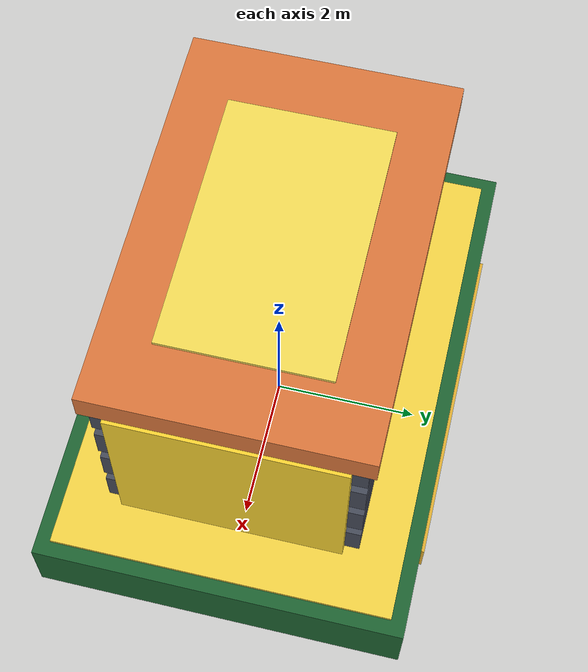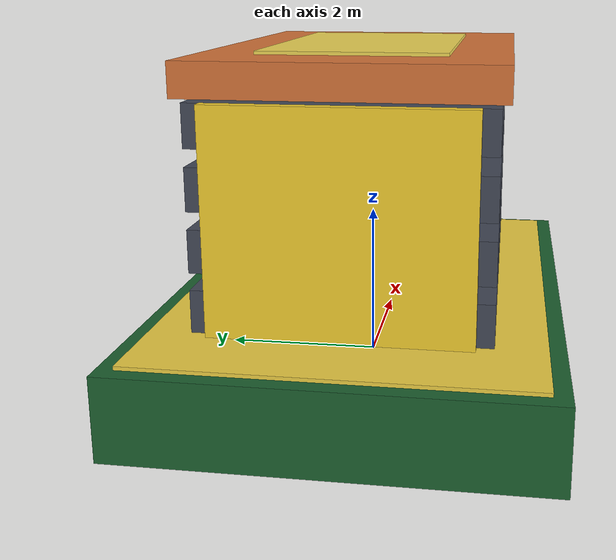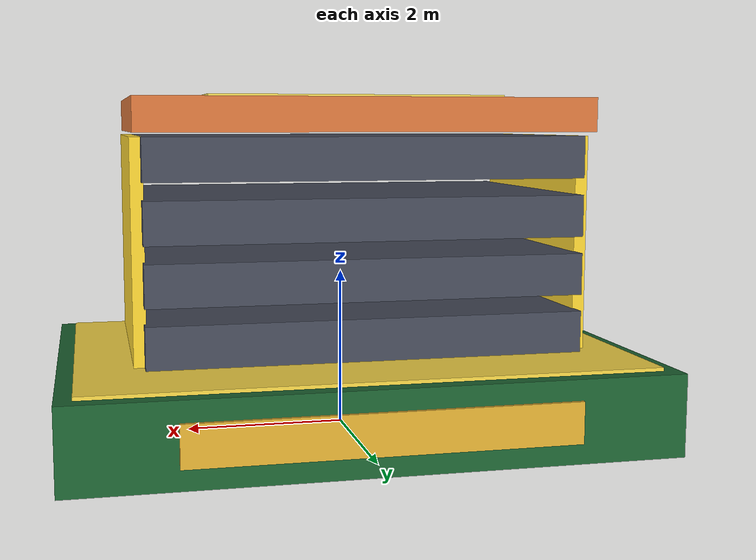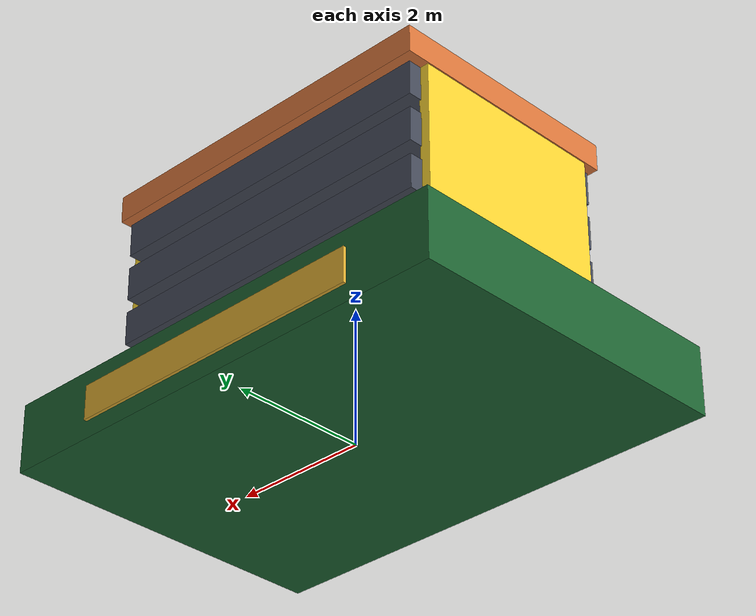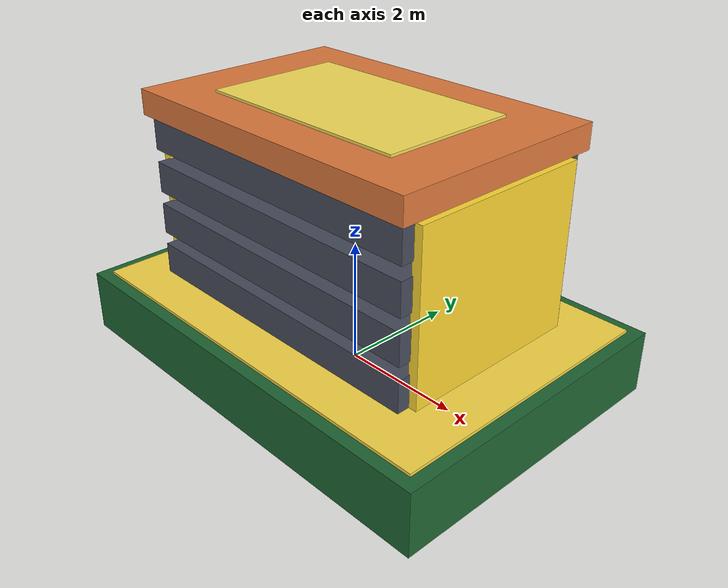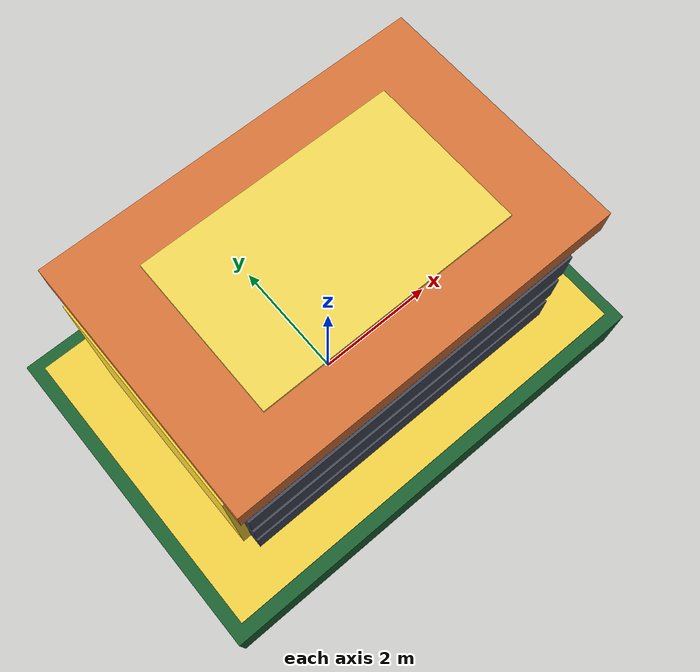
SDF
<?xml version="1.0" ?>
<sdf version="1.8">
  <model name="monument_dram_semiconductor">
    <static>true</static>
    <link name="monument_link">
      <collision name="col">
        <pose>0 0 2.6 0 0 0</pose>
        <geometry><box><size>7.2 5.0 5.2</size></box></geometry>
      </collision>

      <!-- 1. 綠色半導體高密度載板基座 (High-Density Package Substrate Base) -->
      <visual name="plinth_base">
        <pose>0 0 0.5 0 0 0</pose>
        <geometry><box><size>7.2 5.0 1.0</size></box></geometry>
        <material>
          <ambient>0.08 0.30 0.15 1</ambient>
          <diffuse>0.12 0.40 0.20 1</diffuse>
          <specular>0.6 0.7 0.6 1</specular>
        </material>
      </visual>
      <!-- 金色 BGA 銲球陣列基底飾環 (Gold BGA Solder Balls Accent) -->
      <visual name="bga_ring">
        <pose>0 0 1.02 0 0 0</pose>
        <geometry><box><size>6.8 4.6 0.05</size></box></geometry>
        <material>
          <ambient>0.85 0.70 0.20 1</ambient>
          <diffuse>0.98 0.85 0.28 1</diffuse>
          <specular>1 0.95 0.6 1</specular>
        </material>
      </visual>

      <!-- 2. 3D 矽穿孔堆疊晶粒 (4-Layer 3D TSV DRAM Stacked Dies) -->
      <!-- Die Layer 1 -->
      <visual name="dram_die_1">
        <pose>0 0 1.4 0 0 0</pose>
        <geometry><box><size>5.2 3.4 0.5</size></box></geometry>
        <material><ambient>0.20 0.22 0.26 1</ambient><diffuse>0.28 0.30 0.36 1</diffuse><specular>0.9 0.9 0.95 1</specular></material>
      </visual>
      <!-- Die Layer 2 -->
      <visual name="dram_die_2">
        <pose>0 0 2.1 0 0 0</pose>
        <geometry><box><size>5.2 3.4 0.5</size></box></geometry>
        <material><ambient>0.20 0.22 0.26 1</ambient><diffuse>0.28 0.30 0.36 1</diffuse><specular>0.9 0.9 0.95 1</specular></material>
      </visual>
      <!-- Die Layer 3 -->
      <visual name="dram_die_3">
        <pose>0 0 2.8 0 0 0</pose>
        <geometry><box><size>5.2 3.4 0.5</size></box></geometry>
        <material><ambient>0.20 0.22 0.26 1</ambient><diffuse>0.28 0.30 0.36 1</diffuse><specular>0.9 0.9 0.95 1</specular></material>
      </visual>
      <!-- Die Layer 4 -->
      <visual name="dram_die_4">
        <pose>0 0 3.5 0 0 0</pose>
        <geometry><box><size>5.2 3.4 0.5</size></box></geometry>
        <material><ambient>0.20 0.22 0.26 1</ambient><diffuse>0.28 0.30 0.36 1</diffuse><specular>0.9 0.9 0.95 1</specular></material>
      </visual>

      <!-- 矽穿孔垂直微金柱群 (Gold TSV Micro-Pillars) -->
      <visual name="tsv_pillars_l"><pose>-2.65 0 2.45 0 0 0</pose><geometry><box><size>0.15 3.0 2.6</size></box></geometry><material><ambient>0.9 0.75 0.15 1</ambient><diffuse>1 0.85 0.2 1</diffuse></material></visual>
      <visual name="tsv_pillars_r"><pose>2.65 0 2.45 0 0 0</pose><geometry><box><size>0.15 3.0 2.6</size></box></geometry><material><ambient>0.9 0.75 0.15 1</ambient><diffuse>1 0.85 0.2 1</diffuse></material></visual>

      <!-- 3. 頂部紫銅高導熱均熱蓋 (Polished Copper Heat Spreader - IHS) -->
      <visual name="copper_ihs">
        <pose>0 0 4.0 0 0 0</pose>
        <geometry><box><size>5.4 3.6 0.4</size></box></geometry>
        <material>
          <ambient>0.72 0.38 0.18 1</ambient>
          <diffuse>0.88 0.48 0.24 1</diffuse>
          <specular>0.95 0.70 0.40 1</specular>
        </material>
      </visual>
      <!-- 雷雕核心標誌 (Laser Etched Core Pattern) -->
      <visual name="ihs_logo">
        <pose>0 0 4.22 0 0 0</pose>
        <geometry><box><size>3.6 2.2 0.04</size></box></geometry>
        <material>
          <ambient>0.85 0.75 0.25 1</ambient>
          <diffuse>0.98 0.88 0.35 1</diffuse>
          <emissive>0.2 0.15 0.05 1</emissive>
        </material>
      </visual>

      <!-- 4. 金屬銘牌 (南亞科・華邦電・力積電・記憶體與先進封裝之基) -->
      <visual name="dram_plaque">
        <pose>0 2.52 0.5 0 0 0</pose>
        <geometry><box><size>4.6 0.05 0.5</size></box></geometry>
        <material>
          <ambient>0.75 0.55 0.15 1</ambient>
          <diffuse>0.90 0.70 0.20 1</diffuse>
          <specular>0.9 0.8 0.4 1</specular>
        </material>
      </visual>
    </link>
  </model>
</sdf>
